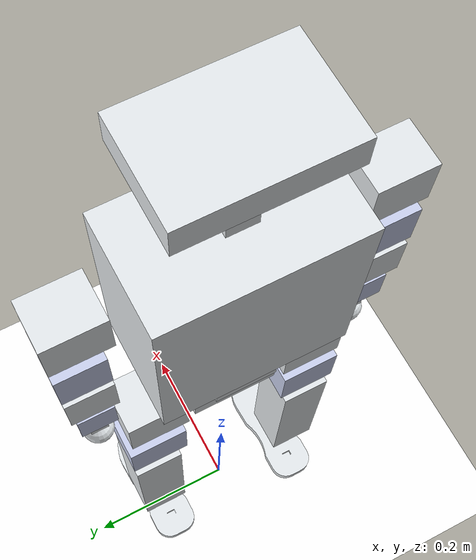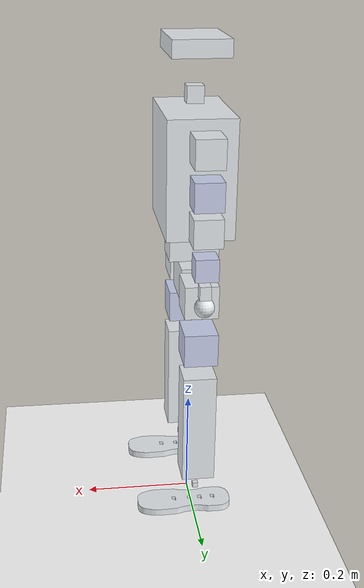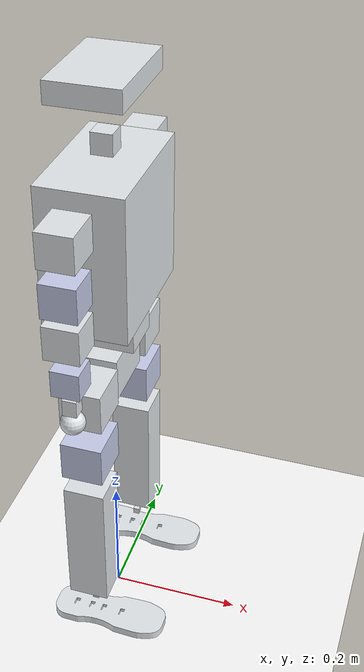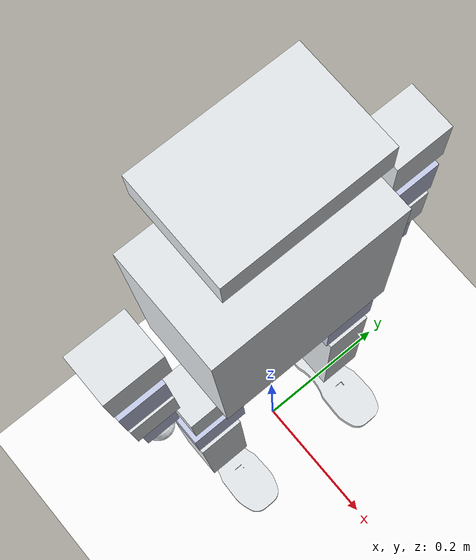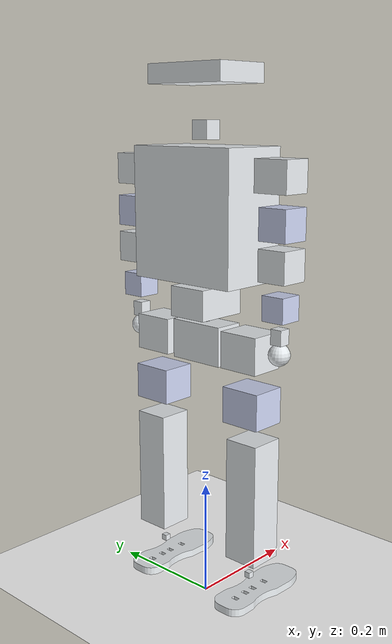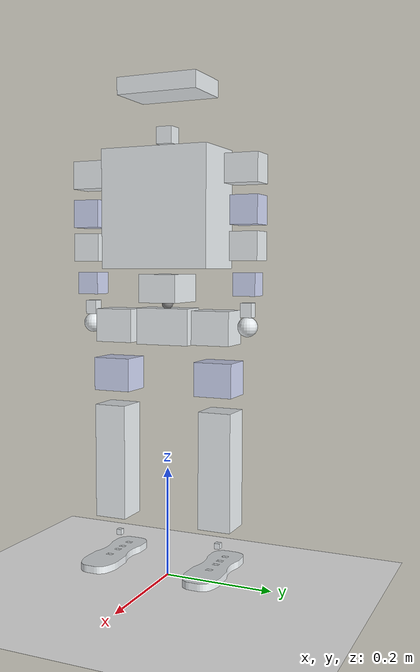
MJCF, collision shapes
<mujoco model="hi_25dof">
  <compiler angle="radian" meshdir="meshes/"/>
  <default>
    <default class="leg_motor">
      <joint damping="0.05" armature="0.044277" frictionloss="0.2" />
    </default>
    <default class="arm_motor">
      <joint damping="0.05" armature="0.008419" frictionloss="0.2" />
    </default>

  </default>
  <asset>
    <mesh name="base_link" file="base_link.STL"/>
    <mesh name="l_hip_pitch_link" file="l_hip_pitch_link.STL"/>
    <mesh name="l_hip_roll_link" file="l_hip_roll_link.STL"/>
    <mesh name="l_hip_thigh_link" file="l_hip_thigh_link.STL"/>
    <mesh name="l_hip_calf_link" file="l_hip_calf_link.STL"/>
    <mesh name="l_ankle_pitch_link" file="l_ankle_pitch_link.STL"/>
    <mesh name="l_ankle_roll_link" file="l_ankle_roll_link.STL"/>
    <mesh name="ankle_roll_simplify" file="ankle_roll_simplify.STL" scale="0.001 0.001 0.001"/>
    <mesh name="r_hip_pitch_link" file="r_hip_pitch_link.STL"/>
    <mesh name="r_hip_roll_link" file="r_hip_roll_link.STL"/>
    <mesh name="r_hip_thigh_link" file="r_hip_thigh_link.STL"/>
    <mesh name="r_hip_calf_link" file="r_hip_calf_link.STL"/>
    <mesh name="r_ankle_pitch_link" file="r_ankle_pitch_link.STL"/>
    <mesh name="r_ankle_roll_link" file="r_ankle_roll_link.STL"/>
    <mesh name="waist_yaw_link" file="waist_yaw_link.STL"/>
    <mesh name="l_shoulder_pitch_link" file="l_shoulder_pitch_link.STL"/>
    <mesh name="l_shoulder_roll_link" file="l_shoulder_roll_link.STL"/>
    <mesh name="l_upper_arm_link" file="l_upper_arm_link.STL"/>
    <mesh name="l_elbow_link" file="l_elbow_link.STL"/>
    <mesh name="l_wrist_link" file="l_wrist_link.STL"/>
    <mesh name="r_shoulder_pitch_link" file="r_shoulder_pitch_link.STL"/>
    <mesh name="r_shoulder_roll_link" file="r_shoulder_roll_link.STL"/>
    <mesh name="r_upper_arm_link" file="r_upper_arm_link.STL"/>
    <mesh name="r_elbow_link" file="r_elbow_link.STL"/>
    <mesh name="r_wrist_link" file="r_wrist_link.STL"/>
    <mesh name="head_yaw_link" file="head_yaw_link.STL"/>
    <mesh name="head_pitch_link" file="head_pitch_link.STL"/>
    <texture type="2d" name="groundplane" builtin="checker" mark="edge" rgb1="1 1 1" rgb2="1 1 1" markrgb="0 0 0" width="512" height="512"/>
    <material name="groundplane" texture="groundplane" texuniform="true" texrepeat="5 5" reflectance="0"/>
    <texture name="texplane" builtin="checker" height="512" width="512" rgb1=".2 .3 .4" rgb2=".1 .15 .2" type="2d" />
    <material name="MatPlane" reflectance="0.5" shininess="0.01" specular="0.1" texrepeat="1 1" texture="texplane" texuniform="true" />
  </asset>

  <visual>
    <global offwidth="1024" offheight="1024"/>
    <rgba haze="0.15 0.25 0.35 1"/>
    <quality shadowsize="2048"/>
    <map stiffness="700" shadowclip="1" zfar="40"/>
    <headlight diffuse="0.6 0.6 0.6" ambient="0.1 0.1 0.1" specular="0.9 0.9 0.9"/>
  </visual>

  <worldbody>
    <geom name="floor" size="0 0 0.01" type="plane" material="groundplane" contype="1" conaffinity="0" priority="1"/>
    <light diffuse=".5 .5 .5" pos="-3 -3 5" dir="3 3 -5" castshadow="true"/>
    <body name="base_link" pos="0 0 0.5">
      <site name="imu" size="0.01" pos="-0.0 -0.0 0.0" />

      <inertial pos="0 0 -0.0394294" quat="0.707104 0.707104 -0.00191349 -0.00191349" mass="1.42581" diaginertia="0.00205355 0.0018257 0.000501455"/>
      <joint name="floating_base_joint" type="free" limited="false" actuatorfrclimited="false" class="leg_motor"/>
      <geom type="mesh" contype="0" conaffinity="0" group="1" density="0" rgba="0.89804 0.91765 0.92941 1" mesh="base_link"/>
      <geom size="0.025 0.05 0.0325" pos="0 0 -0.04" type="box" rgba="0.89804 0.91765 0.92941 1"/>
      <body name="l_hip_pitch_link" pos="0 0.0295 -0.04">
        <inertial pos="0.0003884 0.067835 8.28e-05" quat="0.556493 0.438278 -0.560847 0.428578" mass="0.66505" diaginertia="0.000223908 0.000192604 0.000189288"/>
        <joint name="l_hip_pitch_joint" pos="0 0 0" axis="0 1 0" range="-3.0369 3.0369" actuatorfrcrange="-32.4 32.4" class="leg_motor"/>
        <geom type="mesh" contype="0" conaffinity="0" group="1" density="0" rgba="0.89804 0.91765 0.92941 1" mesh="l_hip_pitch_link"/>
        <geom size="0.03 0.035 0.03" pos="0 0.065 0" type="box" rgba="0.89804 0.91765 0.92941 1"/>
        <body name="l_hip_roll_link" pos="0 0.07 0">
          <inertial pos="0.0009598 0.0001312 -0.081116" quat="0.70836 0.0236484 0.0227625 0.705088" mass="0.78331" diaginertia="0.00146241 0.00126332 0.000491778"/>
          <joint name="l_hip_roll_joint" pos="0 0 0" axis="1 0 0" range="-0.45379 2.618" actuatorfrcrange="-32.4 32.4" class="leg_motor"/>
          <geom type="mesh" contype="0" conaffinity="0" group="1" density="0" rgba="0.79216 0.81961 0.93333 1" mesh="l_hip_roll_link"/>
          <geom size="0.03 0.035 0.03" pos="0 0 -0.09" type="box" rgba="0.79216 0.81961 0.93333 1"/>
          <body name="l_hip_thigh_link" pos="0 0 -0.095">
            <inertial pos="0 -0.00080909 -0.059296" quat="0.588254 0.808676 0 0" mass="0.24756" diaginertia="0.0003962 0.000271392 0.000245108"/>
            <joint name="l_hip_thigh_joint" pos="0 0 0" axis="0 0 1" range="-0.7854 0.7854" actuatorfrcrange="-32.4 32.4" class="leg_motor"/>
            <geom type="mesh" contype="0" conaffinity="0" group="1" density="0" rgba="0.89804 0.91765 0.92941 1" mesh="l_hip_thigh_link"/>
            <geom size="0.005 0.005 0.005" pos="0 0 -0.005" type="box" rgba="0.89804 0.91765 0.92941 1"/>
            <body name="l_hip_calf_link" pos="0 0.00375 -0.097">
              <inertial pos="0.0010123 -0.0024674 -0.064494" quat="0.749749 -0.0135581 0.00418962 0.66157" mass="1.6427" diaginertia="0.00606559 0.00600124 0.000543567"/>
              <joint name="l_hip_calf_joint" pos="0 0 0" axis="0 1 0" range="-1.5708 2.0944" actuatorfrcrange="-32.4 32.4" class="leg_motor"/>
              <geom type="mesh" contype="0" conaffinity="0" group="1" density="0" rgba="0.89804 0.91765 0.92941 1" mesh="l_hip_calf_link"/>
              <geom size="0.03 0.03 0.105" pos="0 0 -0.06" type="box" rgba="0.89804 0.91765 0.92941 1"/>
              <body name="l_ankle_pitch_link" pos="0 -0.00375 -0.19945">
                <inertial pos="0 0 0" quat="0.5 0.5 -0.5 0.5" mass="0.056538" diaginertia="6.3e-06 4.9e-06 4.7e-06"/>
                <joint name="l_ankle_pitch_joint" pos="0 0 0" axis="0 1 0" range="-0.90757 0.7854" actuatorfrcrange="-14.4 14.4" class="leg_motor"/>
                <geom type="mesh" contype="0" conaffinity="0" group="1" density="0" rgba="0.89804 0.91765 0.92941 1" mesh="l_ankle_pitch_link"/>
                <geom size="0.005 0.005 0.005" type="box" rgba="0.89804 0.91765 0.92941 1"/>
                <body name="l_ankle_roll_link">
                  <inertial pos="0.017291 0.00079987 -0.030752" quat="-0.0717589 0.724448 -0.0777767 0.681158" mass="0.59911" diaginertia="0.00144003 0.00137984 0.000239531"/>
                  <joint name="l_ankle_roll_joint" pos="0 0 0" axis="1 0 0" range="-0.37525 0.37525" actuatorfrcrange="-14.4 14.4" class="leg_motor"/>
                  <geom type="mesh" contype="0" conaffinity="0" group="1" density="0" rgba="0.89804 0.91765 0.92941 1" mesh="l_ankle_roll_link"/>
                  <geom pos="-0.067 0.033 -0.044" quat="0.707388 0 0 -0.706825" type="mesh" rgba="0.89804 0.91765 0.92941 1" mesh="ankle_roll_simplify"/>
                </body>
              </body>
            </body>
          </body>
        </body>
      </body>
      <body name="r_hip_pitch_link" pos="0 -0.0295 -0.04">
        <inertial pos="0.0003884 -0.067835 -8.28e-05" quat="0.428578 0.560847 -0.438278 0.556493" mass="0.66505" diaginertia="0.000223908 0.000192604 0.000189288"/>
        <joint name="r_hip_pitch_joint" pos="0 0 0" axis="0 1 0" range="-3.0369 3.0369" actuatorfrcrange="-32.4 32.4" class="leg_motor"/>
        <geom type="mesh" contype="0" conaffinity="0" group="1" density="0" rgba="0.89804 0.91765 0.92941 1" mesh="r_hip_pitch_link"/>
        <geom size="0.03 0.035 0.03" pos="0 -0.065 0" type="box" rgba="0.89804 0.91765 0.92941 1"/>
        <body name="r_hip_roll_link" pos="0 -0.07 0">
          <inertial pos="0.0009598 -0.0001312 -0.081116" quat="0.708631 0.0226903 0.0237133 0.704816" mass="0.78331" diaginertia="0.00146241 0.00126331 0.000491779"/>
          <joint name="r_hip_roll_joint" pos="0 0 0" axis="1 0 0" range="-2.618 0.45379" actuatorfrcrange="-32.4 32.4" class="leg_motor"/>
          <geom type="mesh" contype="0" conaffinity="0" group="1" density="0" rgba="0.79216 0.81961 0.93333 1" mesh="r_hip_roll_link"/>
          <geom size="0.03 0.035 0.03" pos="0 0 -0.09" type="box" rgba="0.79216 0.81961 0.93333 1"/>
          <body name="r_hip_thigh_link" pos="0 0 -0.095">
            <inertial pos="0 0.00080909 -0.059296" quat="0.808676 0.588254 0 0" mass="0.24756" diaginertia="0.0003962 0.000271392 0.000245108"/>
            <joint name="r_hip_thigh_joint" pos="0 0 0" axis="0 0 1" range="-0.7854 0.7854" actuatorfrcrange="-32.4 32.4" class="leg_motor"/>
            <geom type="mesh" contype="0" conaffinity="0" group="1" density="0" rgba="0.89804 0.91765 0.92941 1" mesh="r_hip_thigh_link"/>
            <geom size="0.005 0.005 0.005" pos="0 0 -0.005" type="box" rgba="0.89804 0.91765 0.92941 1"/>
            <body name="r_hip_calf_link" pos="0 -0.00375 -0.097">
              <inertial pos="0.0010123 0.0024674 -0.064494" quat="0.66157 0.00418962 -0.0135581 0.749749" mass="1.6427" diaginertia="0.00606559 0.00600124 0.000543567"/>
              <joint name="r_hip_calf_joint" pos="0 0 0" axis="0 1 0" range="-1.5708 2.0944" actuatorfrcrange="-32.4 32.4" class="leg_motor"/>
              <geom type="mesh" contype="0" conaffinity="0" group="1" density="0" rgba="0.89804 0.91765 0.92941 1" mesh="r_hip_calf_link"/>
              <geom size="0.03 0.03 0.105" pos="0 0 -0.06" type="box" rgba="0.89804 0.91765 0.92941 1"/>
              <body name="r_ankle_pitch_link" pos="0 0.00375 -0.19945">
                <inertial pos="0 0 0" quat="0.5 0.5 -0.5 0.5" mass="0.056538" diaginertia="6.3e-06 4.9e-06 4.7e-06"/>
                <joint name="r_ankle_pitch_joint" pos="0 0 0" axis="0 1 0" range="-0.90757 0.7854" actuatorfrcrange="-14.4 14.4" class="leg_motor"/>
                <geom type="mesh" contype="0" conaffinity="0" group="1" density="0" rgba="0.89804 0.91765 0.92941 1" mesh="r_ankle_pitch_link"/>
                <geom size="0.005 0.005 0.005" type="box" rgba="0.89804 0.91765 0.92941 1"/>
                <body name="r_ankle_roll_link">
                  <inertial pos="0.017291 -0.00079987 -0.030725" quat="0.0717589 0.724448 0.0777767 0.681158" mass="0.59911" diaginertia="0.00144003 0.00137984 0.000239531"/>
                  <joint name="r_ankle_roll_joint" pos="0 0 0" axis="1 0 0" range="-0.37525 0.37525" actuatorfrcrange="-14.4 14.4" class="leg_motor"/>
                  <geom type="mesh" contype="0" conaffinity="0" group="1" density="0" rgba="0.89804 0.91765 0.92941 1" mesh="r_ankle_roll_link"/>
                  <geom pos="-0.067 0.033 -0.044" quat="0.707388 0 0 -0.706825" type="mesh" rgba="0.89804 0.91765 0.92941 1" mesh="ankle_roll_simplify"/>
                </body>
              </body>
            </body>
          </body>
        </body>
      </body>
      <body name="waist_yaw_link" pos="0 0 0.028">
        <inertial pos="-0.0016407 0.000188571 0.160059" quat="0.99983 -0.00160925 0.0183375 -0.000599272" mass="5.70073" diaginertia="0.0736907 0.0576152 0.0276984"/>
        <joint name="waist_yaw_joint" pos="0 0 0" axis="0 0 1" range="-3.14 3.14" actuatorfrcrange="-32.4 32.4" class="leg_motor"/>
        <geom type="mesh" contype="0" conaffinity="0" group="1" density="0" rgba="0.89804 0.91765 0.92941 1" mesh="waist_yaw_link"/>
        <geom size="0.045 0.035 0.025" type="box" rgba="0.89804 0.91765 0.92941 1"/>
        <geom size="0.06 0.1 0.105" pos="0 0 0.14" type="box" rgba="0.89804 0.91765 0.92941 1"/>
        <geom pos="0 0 0.28405" type="mesh" contype="0" conaffinity="0" group="1" density="0" rgba="0.89804 0.91765 0.92941 1" mesh="head_yaw_link"/>
        <geom size="0.015 0.015 0.015" pos="0 0 0.26905" type="box" rgba="0.89804 0.91765 0.92941 1"/>
        <geom pos="0 0.0015 0.3276" quat="1 0 0 0" type="mesh" contype="0" conaffinity="0" group="1" density="0" rgba="0.89804 0.91765 0.92941 1" mesh="head_pitch_link"/>
        <geom size="0.05 0.075 0.015" pos="0 0.0015 0.3526" type="box" rgba="0.89804 0.91765 0.92941 1"/>
        <body name="l_shoulder_pitch_link" pos="0 0.0958 0.205">
          <inertial pos="0.0013054 0.054423 0.0002632" quat="0.555239 0.442102 -0.565643 0.419884" mass="0.39952" diaginertia="0.000125431 0.00010485 9.80192e-05"/>
          <joint name="l_shoulder_pitch_joint" pos="0 0 0" axis="0 1 0" range="-3.1241 2.9496" actuatorfrcrange="-14.4 14.4" class="leg_motor"/>
          <geom type="mesh" contype="0" conaffinity="0" group="1" density="0" rgba="0.89804 0.91765 0.92941 1" mesh="l_shoulder_pitch_link"/>
          <geom size="0.025 0.03 0.025" pos="0 0.053 0" type="box" rgba="0.89804 0.91765 0.92941 1"/>
          <body name="l_shoulder_roll_link" pos="0 0.05775 0">
            <inertial pos="-0.0015954 -0.0001172 -0.067095" quat="0.701105 -0.0661799 -0.0667196 0.706838" mass="0.45185" diaginertia="0.000421604 0.000367225 0.000166471"/>
            <joint name="l_shoulder_roll_joint" pos="0 0 0" axis="1 0 0" range="-0.17453 3.3161" actuatorfrcrange="-14.4 14.4" class="leg_motor"/>
            <geom type="mesh" contype="0" conaffinity="0" group="1" density="0" rgba="0.79216 0.81961 0.93333 1" mesh="l_shoulder_roll_link"/>
            <geom size="0.025 0.025 0.025" pos="0 0 -0.07" type="box" rgba="0.79216 0.81961 0.93333 1"/>
            <body name="l_upper_arm_link" pos="0 -0.00025 -0.07135">
              <inertial pos="-0.000502 0.001614 -0.057008" quat="0.970534 0.23883 0.0257973 -0.0189506" mass="0.41729" diaginertia="0.000133156 0.000122819 0.000114825"/>
              <joint name="l_upper_arm_joint" pos="0 0 0" axis="0 0 1" range="-3.0543 3.0543" actuatorfrcrange="-14.4 14.4" class="leg_motor"/>
              <geom type="mesh" contype="0" conaffinity="0" group="1" density="0" rgba="0.89804 0.91765 0.92941 1" mesh="l_upper_arm_link"/>
              <geom size="0.025 0.025 0.025" pos="0 0 -0.06" type="box" rgba="0.89804 0.91765 0.92941 1"/>
              <body name="l_elbow_link" pos="0 0 -0.06035">
                <inertial pos="-0.0001603 -0.0025954 -0.055121" quat="0.992957 0.118457 -0.000772141 -0.00210089" mass="0.27631" diaginertia="0.000292802 0.0002374 0.000114498"/>
                <joint name="l_elbow_joint" pos="0 0 0" axis="0 1 0" range="-1.9548 1.9548" actuatorfrcrange="-14.4 14.4" class="leg_motor"/>
                <geom type="mesh" contype="0" conaffinity="0" group="1" density="0" rgba="0.79216 0.81961 0.93333 1" mesh="l_elbow_link"/>
                <geom size="0.02 0.02 0.02" pos="0 0 -0.065" type="box" rgba="0.79216 0.81961 0.93333 1"/>
                <body name="l_wrist_link" pos="0 0 -0.0667">
                  <inertial pos="-0.00025 0 -0.049418" mass="0.056855" diaginertia="2.88e-05 2.88e-05 6.4e-06"/>
                  <joint name="l_wrist_joint" pos="0 0 0" axis="0 0 1" range="-3.14 3.14" actuatorfrcrange="-9 9" class="leg_motor"/>
                  <geom type="mesh" contype="0" conaffinity="0" group="1" density="0" rgba="0.89804 0.91765 0.92941 1" mesh="l_wrist_link"/>
                  <geom size="0.01 0.01 0.0125" pos="0 0 -0.043" type="box" rgba="0.89804 0.91765 0.92941 1"/>
                  <geom name="end_collision" size="0.0175" pos="0 0 -0.072" rgba="0.89804 0.91765 0.92941 1"/>
                </body>
              </body>
            </body>
          </body>
        </body>
        <body name="r_shoulder_pitch_link" pos="0 -0.0958 0.205">
          <inertial pos="0.0013054 -0.054423 -0.0002632" quat="0.419884 0.565643 -0.442102 0.555239" mass="0.39952" diaginertia="0.000125431 0.00010485 9.80192e-05"/>
          <joint name="r_shoulder_pitch_joint" pos="0 0 0" axis="0 1 0" range="-3.1241 2.9496" actuatorfrcrange="-14.4 14.4" class="leg_motor"/>
          <geom type="mesh" contype="0" conaffinity="0" group="1" density="0" rgba="0.89804 0.91765 0.92941 1" mesh="r_shoulder_pitch_link"/>
          <geom size="0.025 0.03 0.025" pos="0 -0.053 0" type="box" rgba="0.89804 0.91765 0.92941 1"/>
          <body name="r_shoulder_roll_link" pos="0 -0.05775 0">
            <inertial pos="-0.0015954 0.0001172 -0.067095" quat="0.700453 -0.0670559 -0.0658321 0.707485" mass="0.45185" diaginertia="0.000421606 0.000367223 0.000166471"/>
            <joint name="r_shoulder_roll_joint" pos="0 0 0" axis="1 0 0" range="-3.3161 0.17453" actuatorfrcrange="-14.4 14.4" class="leg_motor"/>
            <geom type="mesh" contype="0" conaffinity="0" group="1" density="0" rgba="0.79216 0.81961 0.93333 1" mesh="r_shoulder_roll_link"/>
            <geom size="0.025 0.025 0.025" pos="0 0 -0.07" type="box" rgba="0.79216 0.81961 0.93333 1"/>
            <body name="r_upper_arm_link" pos="0 0.00025 -0.07135">
              <inertial pos="-0.000502 -0.001614 -0.057008" quat="0.970534 -0.23883 -0.0257973 -0.0189506" mass="0.41729" diaginertia="0.000133156 0.000122819 0.000114825"/>
              <joint name="r_upper_arm_joint" pos="0 0 0" axis="0 0 1" range="-3.0543 3.0543" actuatorfrcrange="-14.4 14.4" class="leg_motor"/>
              <geom type="mesh" contype="0" conaffinity="0" group="1" density="0" rgba="0.89804 0.91765 0.92941 1" mesh="r_upper_arm_link"/>
              <geom size="0.025 0.025 0.025" pos="0 0 -0.06" type="box" rgba="0.89804 0.91765 0.92941 1"/>
              <body name="r_elbow_link" pos="0 0 -0.06035">
                <inertial pos="-0.0001603 0.0025954 -0.055121" quat="0.992957 -0.118457 0.000772141 -0.00210089" mass="0.27631" diaginertia="0.000292802 0.0002374 0.000114498"/>
                <joint name="r_elbow_joint" pos="0 0 0" axis="0 1 0" range="-1.9548 1.9548" actuatorfrcrange="-14.4 14.4" class="leg_motor"/>
                <geom type="mesh" contype="0" conaffinity="0" group="1" density="0" rgba="0.79216 0.81961 0.93333 1" mesh="r_elbow_link"/>
                <geom size="0.02 0.02 0.02" pos="0 0 -0.065" type="box" rgba="0.79216 0.81961 0.93333 1"/>
                <body name="r_wrist_link" pos="0 0 -0.0667">
                  <inertial pos="-0.00025 0 -0.049418" mass="0.056855" diaginertia="2.88e-05 2.88e-05 6.4e-06"/>
                  <joint name="r_wrist_joint" pos="0 0 0" axis="0 0 1" range="-3.14 3.14" actuatorfrcrange="-9 9" class="leg_motor"/>
                  <geom type="mesh" contype="0" conaffinity="0" group="1" density="0" rgba="0.89804 0.91765 0.92941 1" mesh="r_wrist_link"/>
                  <geom size="0.01 0.01 0.0125" pos="0 0 -0.043" type="box" rgba="0.89804 0.91765 0.92941 1"/>
                  <geom size="0.0175" pos="0 0 -0.072" rgba="0.89804 0.91765 0.92941 1"/>
                </body>
              </body>
            </body>
          </body>
        </body>
      </body>
    </body>
  </worldbody>

 <actuator>

      <motor name="l_hip_pitch_joint" joint="l_hip_pitch_joint" gear="1" ctrllimited="true" ctrlrange="-30 30" />
      <motor name="l_hip_roll_joint" joint="l_hip_roll_joint" gear="1" ctrllimited="true" ctrlrange="-30 30" />
      <motor name="l_hip_thigh_joint" joint="l_hip_thigh_joint" gear="1" ctrllimited="true" ctrlrange="-30 30" />
      <motor name="l_hip_calf_joint" joint="l_hip_calf_joint" gear="1" ctrllimited="true" ctrlrange="-30 30" />
      <motor name="l_ankle_pitch_joint" joint="l_ankle_pitch_joint" gear="1" ctrllimited="true" ctrlrange="-30 30" />
      <motor name="l_ankle_roll_joint" joint="l_ankle_roll_joint" gear="1" ctrllimited="true" ctrlrange="-30 30" />
      <motor name="r_hip_pitch_joint" joint="r_hip_pitch_joint" gear="1" ctrllimited="true" ctrlrange="-30 30" />
      <motor name="r_hip_roll_joint" joint="r_hip_roll_joint" gear="1" ctrllimited="true" ctrlrange="-30 30" />
      <motor name="r_hip_thigh_joint" joint="r_hip_thigh_joint" gear="1" ctrllimited="true" ctrlrange="-30 30" />
      <motor name="r_hip_calf_joint" joint="r_hip_calf_joint" gear="1" ctrllimited="true" ctrlrange="-30 30" />
      <motor name="r_ankle_pitch_joint" joint="r_ankle_pitch_joint" gear="1" ctrllimited="true" ctrlrange="-30 30" />
      <motor name="r_ankle_roll_joint" joint="r_ankle_roll_joint" gear="1" ctrllimited="true" ctrlrange="-30 30" />

      <motor name="waist_yaw_joint" joint="waist_yaw_joint" gear="1" ctrllimited="true" ctrlrange="-30 30" />
      <motor name="l_shoulder_pitch_joint" joint="l_shoulder_pitch_joint" gear="1" ctrllimited="true" ctrlrange="-30 30" />
      <motor name="l_shoulder_roll_joint" joint="l_shoulder_roll_joint" gear="1" ctrllimited="true" ctrlrange="-30 30" />
      <motor name="l_upper_arm_joint" joint="l_upper_arm_joint" gear="1" ctrllimited="true" ctrlrange="-30 30" />
      <motor name="l_elbow_joint" joint="l_elbow_joint" gear="1" ctrllimited="true" ctrlrange="-30 30" />
      <motor name="l_wrist_joint" joint="l_wrist_joint" gear="1" ctrllimited="true" ctrlrange="-30 30" />
      <motor name="r_shoulder_pitch_joint" joint="r_shoulder_pitch_joint" gear="1" ctrllimited="true" ctrlrange="-30 30" />
      <motor name="r_shoulder_roll_joint" joint="r_shoulder_roll_joint" gear="1" ctrllimited="true" ctrlrange="-30 30" />
      <motor name="r_upper_arm_joint" joint="r_upper_arm_joint" gear="1" ctrllimited="true" ctrlrange="-30 30" />
      <motor name="r_elbow_joint" joint="r_elbow_joint" gear="1" ctrllimited="true" ctrlrange="-30 30" />
      <motor name="r_wrist_joint" joint="r_wrist_joint" gear="1" ctrllimited="true" ctrlrange="-30 30" />

   </actuator>

  <sensor>
  <!-- position sensors -->
  <actuatorpos name="l_hip_pitch_joint_p" actuator="l_hip_pitch_joint" user="13"/>
  <actuatorpos name="l_hip_roll_joint_p" actuator="l_hip_roll_joint" user="13"/>
  <actuatorpos name="l_hip_thigh_joint_p" actuator="l_hip_thigh_joint" user="13"/>
  <actuatorpos name="l_hip_calf_joint_p" actuator="l_hip_calf_joint" user="13"/>
  <actuatorpos name="l_ankle_pitch_joint_p" actuator="l_ankle_pitch_joint" user="13"/>
  <actuatorpos name="l_ankle_roll_joint_p" actuator="l_ankle_roll_joint" user="13"/>
  <actuatorpos name="r_hip_pitch_joint_p" actuator="r_hip_pitch_joint" user="13"/>
  <actuatorpos name="r_hip_roll_joint_p" actuator="r_hip_roll_joint" user="13"/>
  <actuatorpos name="r_hip_thigh_joint_p" actuator="r_hip_thigh_joint" user="13"/>
  <actuatorpos name="r_hip_calf_joint_p" actuator="r_hip_calf_joint" user="13"/>
  <actuatorpos name="r_ankle_pitch_joint_p" actuator="r_ankle_pitch_joint" user="13"/>
  <actuatorpos name="r_ankle_roll_joint_p" actuator="r_ankle_roll_joint" user="13"/>
  <actuatorpos name="waist_yaw_joint_p" actuator="waist_yaw_joint" user="13"/>
  <actuatorpos name="l_shoulder_pitch_joint_p" actuator="l_shoulder_pitch_joint" user="13"/>
  <actuatorpos name="l_shoulder_roll_joint_p" actuator="l_shoulder_roll_joint" user="13"/>
  <actuatorpos name="l_upper_arm_joint_p" actuator="l_upper_arm_joint" user="13"/>
  <actuatorpos name="l_elbow_joint_p" actuator="l_elbow_joint" user="13"/>
  <actuatorpos name="l_wrist_joint_p" actuator="l_wrist_joint" user="13"/>
  <actuatorpos name="r_shoulder_pitch_joint_p" actuator="r_shoulder_pitch_joint" user="13"/>
  <actuatorpos name="r_shoulder_roll_joint_p" actuator="r_shoulder_roll_joint" user="13"/>
  <actuatorpos name="r_upper_arm_joint_p" actuator="r_upper_arm_joint" user="13"/>
  <actuatorpos name="r_elbow_joint_p" actuator="r_elbow_joint" user="13"/>
  <actuatorpos name="r_wrist_joint_p" actuator="r_wrist_joint" user="13"/>

  <!-- velocity sensors -->
  <actuatorvel name="l_hip_pitch_joint_v" actuator="l_hip_pitch_joint" user="13" noise="1e-3"/>
  <actuatorvel name="l_hip_roll_joint_v" actuator="l_hip_roll_joint" user="13" noise="1e-3"/>
  <actuatorvel name="l_hip_thigh_joint_v" actuator="l_hip_thigh_joint" user="13" noise="1e-3"/>
  <actuatorvel name="l_hip_calf_joint_v" actuator="l_hip_calf_joint" user="13" noise="1e-3"/>
  <actuatorvel name="l_ankle_pitch_joint_v" actuator="l_ankle_pitch_joint" user="13" noise="1e-3"/>
  <actuatorvel name="l_ankle_roll_joint_v" actuator="l_ankle_roll_joint" user="13" noise="1e-3"/>
  <actuatorvel name="r_hip_pitch_joint_v" actuator="r_hip_pitch_joint" user="13" noise="1e-3"/>
  <actuatorvel name="r_hip_roll_joint_v" actuator="r_hip_roll_joint" user="13" noise="1e-3"/>
  <actuatorvel name="r_hip_thigh_joint_v" actuator="r_hip_thigh_joint" user="13" noise="1e-3"/>
  <actuatorvel name="r_hip_calf_joint_v" actuator="r_hip_calf_joint" user="13" noise="1e-3"/>
  <actuatorvel name="r_ankle_pitch_joint_v" actuator="r_ankle_pitch_joint" user="13" noise="1e-3"/>
  <actuatorvel name="r_ankle_roll_joint_v" actuator="r_ankle_roll_joint" user="13" noise="1e-3"/>
  <actuatorvel name="waist_yaw_joint_v" actuator="waist_yaw_joint" user="13" noise="1e-3"/>
  <actuatorvel name="l_shoulder_pitch_joint_v" actuator="l_shoulder_pitch_joint" user="13" noise="1e-3"/>
  <actuatorvel name="l_shoulder_roll_joint_v" actuator="l_shoulder_roll_joint" user="13" noise="1e-3"/>
  <actuatorvel name="l_upper_arm_joint_v" actuator="l_upper_arm_joint" user="13" noise="1e-3"/>
  <actuatorvel name="l_elbow_joint_v" actuator="l_elbow_joint" user="13" noise="1e-3"/>
  <actuatorvel name="l_wrist_joint_v" actuator="l_wrist_joint" user="13" noise="1e-3"/>
  <actuatorvel name="r_shoulder_pitch_joint_v" actuator="r_shoulder_pitch_joint" user="13" noise="1e-3"/>
  <actuatorvel name="r_shoulder_roll_joint_v" actuator="r_shoulder_roll_joint" user="13" noise="1e-3"/>
  <actuatorvel name="r_upper_arm_joint_v" actuator="r_upper_arm_joint" user="13" noise="1e-3"/>
  <actuatorvel name="r_elbow_joint_v" actuator="r_elbow_joint" user="13" noise="1e-3"/>
  <actuatorvel name="r_wrist_joint_v" actuator="r_wrist_joint" user="13" noise="1e-3"/>

    <!-- Force sensors -->
  <actuatorfrc name="l_hip_pitch_joint_f" actuator="l_hip_pitch_joint" user="13" noise="1e-3"/>
  <actuatorfrc name="l_hip_roll_joint_f" actuator="l_hip_roll_joint" user="13" noise="1e-3"/>
  <actuatorfrc name="l_hip_thigh_joint_f" actuator="l_hip_thigh_joint" user="13" noise="1e-3"/>
  <actuatorfrc name="l_hip_calf_joint_f" actuator="l_hip_calf_joint" user="13" noise="1e-3"/>
  <actuatorfrc name="l_ankle_pitch_joint_f" actuator="l_ankle_pitch_joint" user="13" noise="1e-3"/>
  <actuatorfrc name="l_ankle_roll_joint_f" actuator="l_ankle_roll_joint" user="13" noise="1e-3"/>
  <actuatorfrc name="r_hip_pitch_joint_f" actuator="r_hip_pitch_joint" user="13" noise="1e-3"/>
  <actuatorfrc name="r_hip_roll_joint_f" actuator="r_hip_roll_joint" user="13" noise="1e-3"/>
  <actuatorfrc name="r_hip_thigh_joint_f" actuator="r_hip_thigh_joint" user="13" noise="1e-3"/>
  <actuatorfrc name="r_hip_calf_joint_f" actuator="r_hip_calf_joint" user="13" noise="1e-3"/>
  <actuatorfrc name="r_ankle_pitch_joint_f" actuator="r_ankle_pitch_joint" user="13" noise="1e-3"/>
  <actuatorfrc name="r_ankle_roll_joint_f" actuator="r_ankle_roll_joint" user="13" noise="1e-3"/>
  <actuatorfrc name="waist_yaw_joint_f" actuator="waist_yaw_joint" user="13" noise="1e-3"/>
  <actuatorfrc name="l_shoulder_pitch_joint_f" actuator="l_shoulder_pitch_joint" user="13" noise="1e-3"/>
  <actuatorfrc name="l_shoulder_roll_joint_f" actuator="l_shoulder_roll_joint" user="13" noise="1e-3"/>
  <actuatorfrc name="l_upper_arm_joint_f" actuator="l_upper_arm_joint" user="13" noise="1e-3"/>
  <actuatorfrc name="l_elbow_joint_f" actuator="l_elbow_joint" user="13" noise="1e-3"/>
  <actuatorfrc name="l_wrist_joint_f" actuator="l_wrist_joint" user="13" noise="1e-3"/>
  <actuatorfrc name="r_shoulder_pitch_joint_f" actuator="r_shoulder_pitch_joint" user="13" noise="1e-3"/>
  <actuatorfrc name="r_shoulder_roll_joint_f" actuator="r_shoulder_roll_joint" user="13" noise="1e-3"/>
  <actuatorfrc name="r_upper_arm_joint_f" actuator="r_upper_arm_joint" user="13" noise="1e-3"/>
  <actuatorfrc name="r_elbow_joint_f" actuator="r_elbow_joint" user="13" noise="1e-3"/>
  <actuatorfrc name="r_wrist_joint_f" actuator="r_wrist_joint" user="13" noise="1e-3"/>

  <!-- position and velocity sensors -->
  <framepos name='position' objtype='site' noise='0.001' objname='imu'/>
  <velocimeter name='linear-velocity' site='imu' noise='0.001' cutoff='30'/>
  <!-- imu sensors -->
  <framequat name='orientation' objtype='site' noise='0.001' objname='imu'/>
  <gyro name='angular-velocity' site='imu' noise='0.005' cutoff='34.9'/>
  <accelerometer name='linear-acceleration' site='imu' noise='0.005' cutoff='157'/>
  <magnetometer name='magnetometer' site='imu'/>

  </sensor>

</mujoco>
